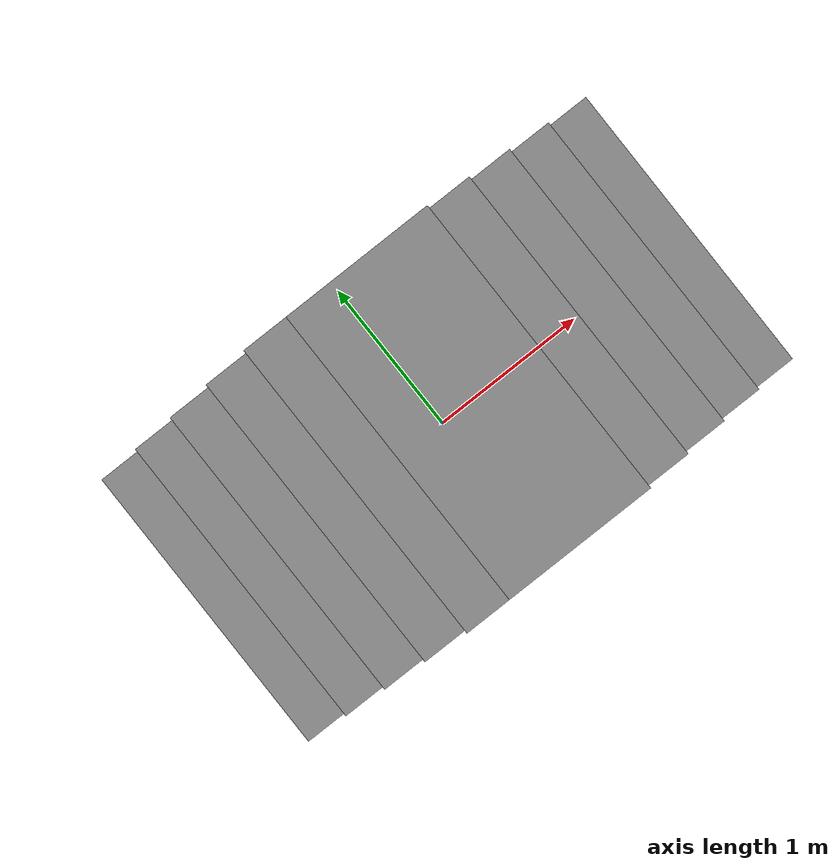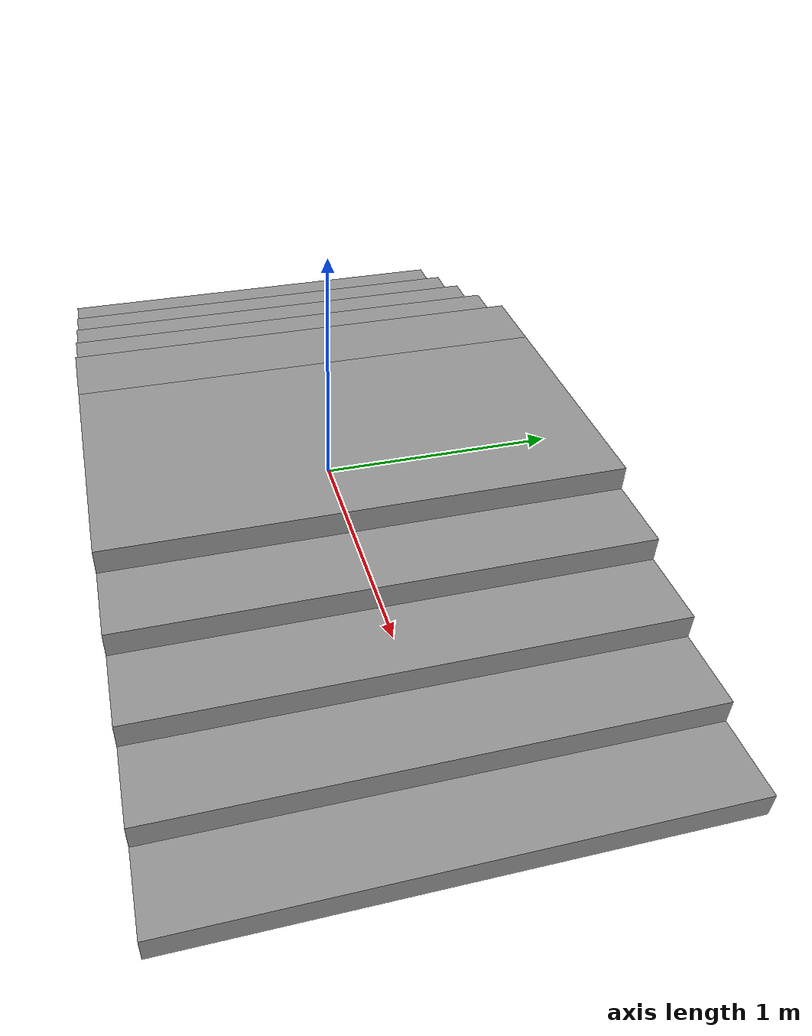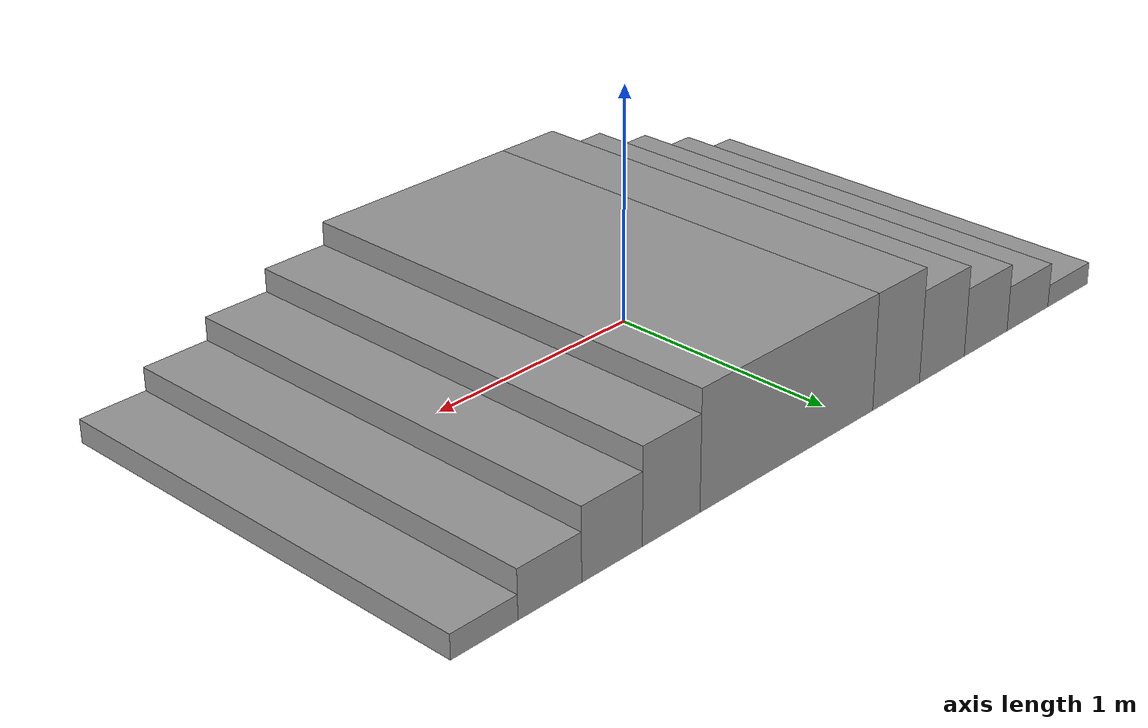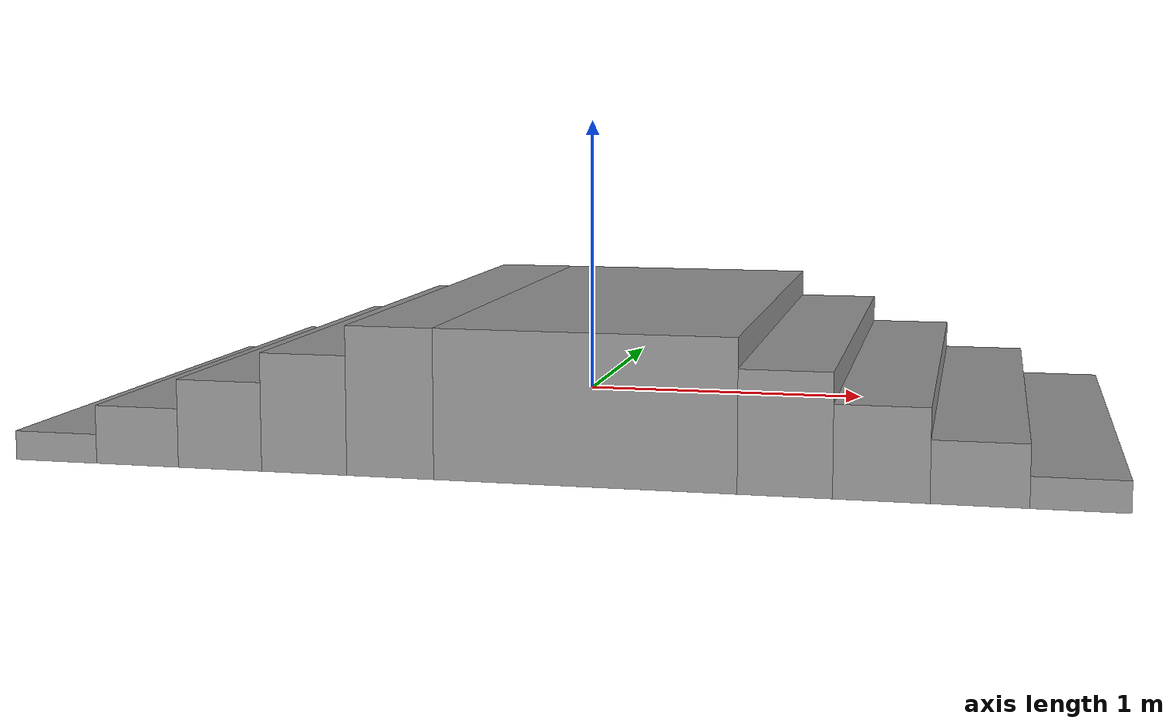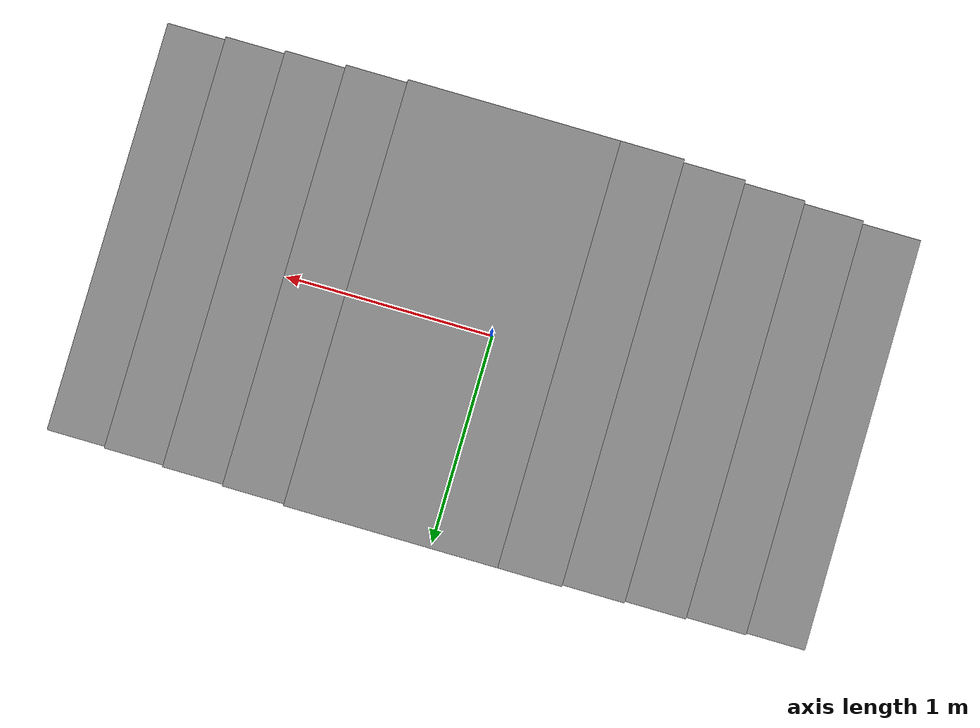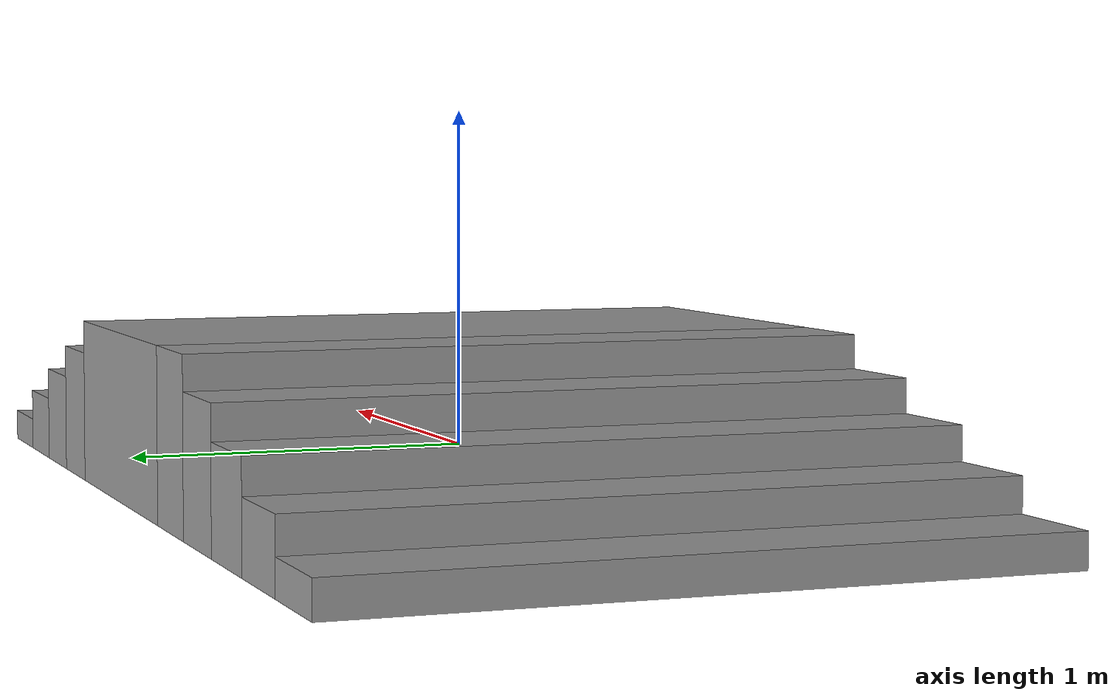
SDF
<?xml version='1.0'?>
<sdf version='1.7'>
  <model name='10cm'>
    <link name='link_0'>
      <inertial>
        <mass>1</mass>
        <inertia>
          <ixx>0.166667</ixx>
          <ixy>0</ixy>
          <ixz>0</ixz>
          <iyy>0.166667</iyy>
          <iyz>0</iyz>
          <izz>0.166667</izz>
        </inertia>
        <pose>0 0 0 0 -0 0</pose>
      </inertial>
      <pose>-1.665 0 -0.1 0 -0 0</pose>
      <gravity>1</gravity>
      <self_collide>0</self_collide>
      <kinematic>1</kinematic>
      <enable_wind>0</enable_wind>
      <visual name='visual'>
        <pose>0 0 0 0 -0 0</pose>
        <geometry>
          <box>
            <size>0.3 2 0.1</size>
          </box>
        </geometry>
        <material>
          <lighting>1</lighting>
          <script>
            <uri>file://media/materials/scripts/gazebo.material</uri>
            <name>Gazebo/Grey</name>
          </script>
          <shader type='pixel'>
            <normal_map>__default__</normal_map>
          </shader>
          <ambient>0.3 0.3 0.3 1</ambient>
          <diffuse>0.7 0.7 0.7 1</diffuse>
          <specular>0.01 0.01 0.01 1</specular>
          <emissive>0 0 0 1</emissive>
        </material>
        <transparency>0</transparency>
        <cast_shadows>1</cast_shadows>
      </visual>
      <collision name='collision'>
        <laser_retro>0</laser_retro>
        <max_contacts>10</max_contacts>
        <pose>0 0 0 0 -0 0</pose>
        <geometry>
          <box>
            <size>0.3 2 0.1</size>
          </box>
        </geometry>
        <surface>
          <friction>
            <ode>
              <mu>1</mu>
              <mu2>1</mu2>
              <fdir1>0 0 0</fdir1>
              <slip1>0</slip1>
              <slip2>0</slip2>
            </ode>
            <torsional>
              <coefficient>1</coefficient>
              <patch_radius>0</patch_radius>
              <surface_radius>0</surface_radius>
              <use_patch_radius>1</use_patch_radius>
              <ode>
                <slip>0</slip>
              </ode>
            </torsional>
          </friction>
          <bounce>
            <restitution_coefficient>0</restitution_coefficient>
            <threshold>1e+06</threshold>
          </bounce>
          <contact>
            <collide_without_contact>0</collide_without_contact>
            <collide_without_contact_bitmask>1</collide_without_contact_bitmask>
            <collide_bitmask>1</collide_bitmask>
            <ode>
              <soft_cfm>0</soft_cfm>
              <soft_erp>0.2</soft_erp>
              <kp>1e+13</kp>
              <kd>1</kd>
              <max_vel>0.01</max_vel>
              <min_depth>0</min_depth>
            </ode>
            <bullet>
              <split_impulse>1</split_impulse>
              <split_impulse_penetration_threshold>-0.01</split_impulse_penetration_threshold>
              <soft_cfm>0</soft_cfm>
              <soft_erp>0.2</soft_erp>
              <kp>1e+13</kp>
              <kd>1</kd>
            </bullet>
          </contact>
        </surface>
      </collision>
    </link>
    <link name='link_0_clone'>
      <inertial>
        <mass>1</mass>
        <inertia>
          <ixx>0.166667</ixx>
          <ixy>0</ixy>
          <ixz>0</ixz>
          <iyy>0.166667</iyy>
          <iyz>0</iyz>
          <izz>0.166667</izz>
        </inertia>
        <pose>0 0 0 0 -0 0</pose>
      </inertial>
      <pose>-1.365 0 -0.05 0 -0 0</pose>
      <gravity>1</gravity>
      <self_collide>0</self_collide>
      <kinematic>1</kinematic>
      <enable_wind>0</enable_wind>
      <visual name='visual'>
        <pose>0 0 0 0 -0 0</pose>
        <geometry>
          <box>
            <size>0.3 2 0.2</size>
          </box>
        </geometry>
        <material>
          <lighting>1</lighting>
          <script>
            <uri>file://media/materials/scripts/gazebo.material</uri>
            <name>Gazebo/Grey</name>
          </script>
          <shader type='pixel'>
            <normal_map>__default__</normal_map>
          </shader>
          <ambient>0.3 0.3 0.3 1</ambient>
          <diffuse>0.7 0.7 0.7 1</diffuse>
          <specular>0.01 0.01 0.01 1</specular>
          <emissive>0 0 0 1</emissive>
        </material>
        <transparency>0</transparency>
        <cast_shadows>1</cast_shadows>
      </visual>
      <collision name='collision'>
        <laser_retro>0</laser_retro>
        <max_contacts>10</max_contacts>
        <pose>0 0 0 0 -0 0</pose>
        <geometry>
          <box>
            <size>0.3 2 0.2</size>
          </box>
        </geometry>
        <surface>
          <friction>
            <ode>
              <mu>1</mu>
              <mu2>1</mu2>
              <fdir1>0 0 0</fdir1>
              <slip1>0</slip1>
              <slip2>0</slip2>
            </ode>
            <torsional>
              <coefficient>1</coefficient>
              <patch_radius>0</patch_radius>
              <surface_radius>0</surface_radius>
              <use_patch_radius>1</use_patch_radius>
              <ode>
                <slip>0</slip>
              </ode>
            </torsional>
          </friction>
          <bounce>
            <restitution_coefficient>0</restitution_coefficient>
            <threshold>1e+06</threshold>
          </bounce>
          <contact>
            <collide_without_contact>0</collide_without_contact>
            <collide_without_contact_bitmask>1</collide_without_contact_bitmask>
            <collide_bitmask>1</collide_bitmask>
            <ode>
              <soft_cfm>0</soft_cfm>
              <soft_erp>0.2</soft_erp>
              <kp>1e+13</kp>
              <kd>1</kd>
              <max_vel>0.01</max_vel>
              <min_depth>0</min_depth>
            </ode>
            <bullet>
              <split_impulse>1</split_impulse>
              <split_impulse_penetration_threshold>-0.01</split_impulse_penetration_threshold>
              <soft_cfm>0</soft_cfm>
              <soft_erp>0.2</soft_erp>
              <kp>1e+13</kp>
              <kd>1</kd>
            </bullet>
          </contact>
        </surface>
      </collision>
    </link>
    <link name='link_0_clone_0'>
      <inertial>
        <mass>1</mass>
        <inertia>
          <ixx>0.166667</ixx>
          <ixy>0</ixy>
          <ixz>0</ixz>
          <iyy>0.166667</iyy>
          <iyz>0</iyz>
          <izz>0.166667</izz>
        </inertia>
        <pose>0 0 0 0 -0 0</pose>
      </inertial>
      <pose>1.735 0 -0.1 0 -0 0</pose>
      <gravity>1</gravity>
      <self_collide>0</self_collide>
      <kinematic>1</kinematic>
      <enable_wind>0</enable_wind>
      <visual name='visual'>
        <pose>0 0 0 0 -0 0</pose>
        <geometry>
          <box>
            <size>0.3 2 0.1</size>
          </box>
        </geometry>
        <material>
          <lighting>1</lighting>
          <script>
            <uri>file://media/materials/scripts/gazebo.material</uri>
            <name>Gazebo/Grey</name>
          </script>
          <shader type='pixel'>
            <normal_map>__default__</normal_map>
          </shader>
          <ambient>0.3 0.3 0.3 1</ambient>
          <diffuse>0.7 0.7 0.7 1</diffuse>
          <specular>0.01 0.01 0.01 1</specular>
          <emissive>0 0 0 1</emissive>
        </material>
        <transparency>0</transparency>
        <cast_shadows>1</cast_shadows>
      </visual>
      <collision name='collision'>
        <laser_retro>0</laser_retro>
        <max_contacts>10</max_contacts>
        <pose>0 0 0 0 -0 0</pose>
        <geometry>
          <box>
            <size>0.3 2 0.1</size>
          </box>
        </geometry>
        <surface>
          <friction>
            <ode>
              <mu>1</mu>
              <mu2>1</mu2>
              <fdir1>0 0 0</fdir1>
              <slip1>0</slip1>
              <slip2>0</slip2>
            </ode>
            <torsional>
              <coefficient>1</coefficient>
              <patch_radius>0</patch_radius>
              <surface_radius>0</surface_radius>
              <use_patch_radius>1</use_patch_radius>
              <ode>
                <slip>0</slip>
              </ode>
            </torsional>
          </friction>
          <bounce>
            <restitution_coefficient>0</restitution_coefficient>
            <threshold>1e+06</threshold>
          </bounce>
          <contact>
            <collide_without_contact>0</collide_without_contact>
            <collide_without_contact_bitmask>1</collide_without_contact_bitmask>
            <collide_bitmask>1</collide_bitmask>
            <ode>
              <soft_cfm>0</soft_cfm>
              <soft_erp>0.2</soft_erp>
              <kp>1e+13</kp>
              <kd>1</kd>
              <max_vel>0.01</max_vel>
              <min_depth>0</min_depth>
            </ode>
            <bullet>
              <split_impulse>1</split_impulse>
              <split_impulse_penetration_threshold>-0.01</split_impulse_penetration_threshold>
              <soft_cfm>0</soft_cfm>
              <soft_erp>0.2</soft_erp>
              <kp>1e+13</kp>
              <kd>1</kd>
            </bullet>
          </contact>
        </surface>
      </collision>
    </link>
    <link name='link_0_clone_clone'>
      <inertial>
        <mass>1</mass>
        <inertia>
          <ixx>0.166667</ixx>
          <ixy>0</ixy>
          <ixz>0</ixz>
          <iyy>0.166667</iyy>
          <iyz>0</iyz>
          <izz>0.166667</izz>
        </inertia>
        <pose>0 0 0 0 -0 0</pose>
      </inertial>
      <pose>-1.065 0 0 0 -0 0</pose>
      <gravity>1</gravity>
      <self_collide>0</self_collide>
      <kinematic>1</kinematic>
      <enable_wind>0</enable_wind>
      <visual name='visual'>
        <pose>0 0 0 0 -0 0</pose>
        <geometry>
          <box>
            <size>0.3 2 0.3</size>
          </box>
        </geometry>
        <material>
          <lighting>1</lighting>
          <script>
            <uri>file://media/materials/scripts/gazebo.material</uri>
            <name>Gazebo/Grey</name>
          </script>
          <shader type='pixel'>
            <normal_map>__default__</normal_map>
          </shader>
          <ambient>0.3 0.3 0.3 1</ambient>
          <diffuse>0.7 0.7 0.7 1</diffuse>
          <specular>0.01 0.01 0.01 1</specular>
          <emissive>0 0 0 1</emissive>
        </material>
        <transparency>0</transparency>
        <cast_shadows>1</cast_shadows>
      </visual>
      <collision name='collision'>
        <laser_retro>0</laser_retro>
        <max_contacts>10</max_contacts>
        <pose>0 0 0 0 -0 0</pose>
        <geometry>
          <box>
            <size>0.3 2 0.3</size>
          </box>
        </geometry>
        <surface>
          <friction>
            <ode>
              <mu>1</mu>
              <mu2>1</mu2>
              <fdir1>0 0 0</fdir1>
              <slip1>0</slip1>
              <slip2>0</slip2>
            </ode>
            <torsional>
              <coefficient>1</coefficient>
              <patch_radius>0</patch_radius>
              <surface_radius>0</surface_radius>
              <use_patch_radius>1</use_patch_radius>
              <ode>
                <slip>0</slip>
              </ode>
            </torsional>
          </friction>
          <bounce>
            <restitution_coefficient>0</restitution_coefficient>
            <threshold>1e+06</threshold>
          </bounce>
          <contact>
            <collide_without_contact>0</collide_without_contact>
            <collide_without_contact_bitmask>1</collide_without_contact_bitmask>
            <collide_bitmask>1</collide_bitmask>
            <ode>
              <soft_cfm>0</soft_cfm>
              <soft_erp>0.2</soft_erp>
              <kp>1e+13</kp>
              <kd>1</kd>
              <max_vel>0.01</max_vel>
              <min_depth>0</min_depth>
            </ode>
            <bullet>
              <split_impulse>1</split_impulse>
              <split_impulse_penetration_threshold>-0.01</split_impulse_penetration_threshold>
              <soft_cfm>0</soft_cfm>
              <soft_erp>0.2</soft_erp>
              <kp>1e+13</kp>
              <kd>1</kd>
            </bullet>
          </contact>
        </surface>
      </collision>
    </link>
    <link name='link_0_clone_clone_0'>
      <inertial>
        <mass>1</mass>
        <inertia>
          <ixx>0.166667</ixx>
          <ixy>0</ixy>
          <ixz>0</ixz>
          <iyy>0.166667</iyy>
          <iyz>0</iyz>
          <izz>0.166667</izz>
        </inertia>
        <pose>0 0 0 0 -0 0</pose>
      </inertial>
      <pose>1.435 0 -0.05 0 -0 0</pose>
      <gravity>1</gravity>
      <self_collide>0</self_collide>
      <kinematic>1</kinematic>
      <enable_wind>0</enable_wind>
      <visual name='visual'>
        <pose>0 0 0 0 -0 0</pose>
        <geometry>
          <box>
            <size>0.3 2 0.2</size>
          </box>
        </geometry>
        <material>
          <lighting>1</lighting>
          <script>
            <uri>file://media/materials/scripts/gazebo.material</uri>
            <name>Gazebo/Grey</name>
          </script>
          <shader type='pixel'>
            <normal_map>__default__</normal_map>
          </shader>
          <ambient>0.3 0.3 0.3 1</ambient>
          <diffuse>0.7 0.7 0.7 1</diffuse>
          <specular>0.01 0.01 0.01 1</specular>
          <emissive>0 0 0 1</emissive>
        </material>
        <transparency>0</transparency>
        <cast_shadows>1</cast_shadows>
      </visual>
      <collision name='collision'>
        <laser_retro>0</laser_retro>
        <max_contacts>10</max_contacts>
        <pose>0 0 0 0 -0 0</pose>
        <geometry>
          <box>
            <size>0.3 2 0.2</size>
          </box>
        </geometry>
        <surface>
          <friction>
            <ode>
              <mu>1</mu>
              <mu2>1</mu2>
              <fdir1>0 0 0</fdir1>
              <slip1>0</slip1>
              <slip2>0</slip2>
            </ode>
            <torsional>
              <coefficient>1</coefficient>
              <patch_radius>0</patch_radius>
              <surface_radius>0</surface_radius>
              <use_patch_radius>1</use_patch_radius>
              <ode>
                <slip>0</slip>
              </ode>
            </torsional>
          </friction>
          <bounce>
            <restitution_coefficient>0</restitution_coefficient>
            <threshold>1e+06</threshold>
          </bounce>
          <contact>
            <collide_without_contact>0</collide_without_contact>
            <collide_without_contact_bitmask>1</collide_without_contact_bitmask>
            <collide_bitmask>1</collide_bitmask>
            <ode>
              <soft_cfm>0</soft_cfm>
              <soft_erp>0.2</soft_erp>
              <kp>1e+13</kp>
              <kd>1</kd>
              <max_vel>0.01</max_vel>
              <min_depth>0</min_depth>
            </ode>
            <bullet>
              <split_impulse>1</split_impulse>
              <split_impulse_penetration_threshold>-0.01</split_impulse_penetration_threshold>
              <soft_cfm>0</soft_cfm>
              <soft_erp>0.2</soft_erp>
              <kp>1e+13</kp>
              <kd>1</kd>
            </bullet>
          </contact>
        </surface>
      </collision>
    </link>
    <link name='link_0_clone_clone_clone'>
      <inertial>
        <mass>1</mass>
        <inertia>
          <ixx>0.166667</ixx>
          <ixy>0</ixy>
          <ixz>0</ixz>
          <iyy>0.166667</iyy>
          <iyz>0</iyz>
          <izz>0.166667</izz>
        </inertia>
        <pose>0 0 0 0 -0 0</pose>
      </inertial>
      <pose>-0.765 0 0.05 0 -0 0</pose>
      <gravity>1</gravity>
      <self_collide>0</self_collide>
      <kinematic>1</kinematic>
      <enable_wind>0</enable_wind>
      <visual name='visual'>
        <pose>0 0 0 0 -0 0</pose>
        <geometry>
          <box>
            <size>0.3 2 0.4</size>
          </box>
        </geometry>
        <material>
          <lighting>1</lighting>
          <script>
            <uri>file://media/materials/scripts/gazebo.material</uri>
            <name>Gazebo/Grey</name>
          </script>
          <shader type='pixel'>
            <normal_map>__default__</normal_map>
          </shader>
          <ambient>0.3 0.3 0.3 1</ambient>
          <diffuse>0.7 0.7 0.7 1</diffuse>
          <specular>0.01 0.01 0.01 1</specular>
          <emissive>0 0 0 1</emissive>
        </material>
        <transparency>0</transparency>
        <cast_shadows>1</cast_shadows>
      </visual>
      <collision name='collision'>
        <laser_retro>0</laser_retro>
        <max_contacts>10</max_contacts>
        <pose>0 0 0 0 -0 0</pose>
        <geometry>
          <box>
            <size>0.3 2 0.4</size>
          </box>
        </geometry>
        <surface>
          <friction>
            <ode>
              <mu>1</mu>
              <mu2>1</mu2>
              <fdir1>0 0 0</fdir1>
              <slip1>0</slip1>
              <slip2>0</slip2>
            </ode>
            <torsional>
              <coefficient>1</coefficient>
              <patch_radius>0</patch_radius>
              <surface_radius>0</surface_radius>
              <use_patch_radius>1</use_patch_radius>
              <ode>
                <slip>0</slip>
              </ode>
            </torsional>
          </friction>
          <bounce>
            <restitution_coefficient>0</restitution_coefficient>
            <threshold>1e+06</threshold>
          </bounce>
          <contact>
            <collide_without_contact>0</collide_without_contact>
            <collide_without_contact_bitmask>1</collide_without_contact_bitmask>
            <collide_bitmask>1</collide_bitmask>
            <ode>
              <soft_cfm>0</soft_cfm>
              <soft_erp>0.2</soft_erp>
              <kp>1e+13</kp>
              <kd>1</kd>
              <max_vel>0.01</max_vel>
              <min_depth>0</min_depth>
            </ode>
            <bullet>
              <split_impulse>1</split_impulse>
              <split_impulse_penetration_threshold>-0.01</split_impulse_penetration_threshold>
              <soft_cfm>0</soft_cfm>
              <soft_erp>0.2</soft_erp>
              <kp>1e+13</kp>
              <kd>1</kd>
            </bullet>
          </contact>
        </surface>
      </collision>
    </link>
    <link name='link_0_clone_clone_clone_0'>
      <inertial>
        <mass>1</mass>
        <inertia>
          <ixx>0.166667</ixx>
          <ixy>0</ixy>
          <ixz>0</ixz>
          <iyy>0.166667</iyy>
          <iyz>0</iyz>
          <izz>0.166667</izz>
        </inertia>
        <pose>0 0 0 0 -0 0</pose>
      </inertial>
      <pose>1.135 0 0 0 -0 0</pose>
      <gravity>1</gravity>
      <self_collide>0</self_collide>
      <kinematic>1</kinematic>
      <enable_wind>0</enable_wind>
      <visual name='visual'>
        <pose>0 0 0 0 -0 0</pose>
        <geometry>
          <box>
            <size>0.3 2 0.3</size>
          </box>
        </geometry>
        <material>
          <lighting>1</lighting>
          <script>
            <uri>file://media/materials/scripts/gazebo.material</uri>
            <name>Gazebo/Grey</name>
          </script>
          <shader type='pixel'>
            <normal_map>__default__</normal_map>
          </shader>
          <ambient>0.3 0.3 0.3 1</ambient>
          <diffuse>0.7 0.7 0.7 1</diffuse>
          <specular>0.01 0.01 0.01 1</specular>
          <emissive>0 0 0 1</emissive>
        </material>
        <transparency>0</transparency>
        <cast_shadows>1</cast_shadows>
      </visual>
      <collision name='collision'>
        <laser_retro>0</laser_retro>
        <max_contacts>10</max_contacts>
        <pose>0 0 0 0 -0 0</pose>
        <geometry>
          <box>
            <size>0.3 2 0.3</size>
          </box>
        </geometry>
        <surface>
          <friction>
            <ode>
              <mu>1</mu>
              <mu2>1</mu2>
              <fdir1>0 0 0</fdir1>
              <slip1>0</slip1>
              <slip2>0</slip2>
            </ode>
            <torsional>
              <coefficient>1</coefficient>
              <patch_radius>0</patch_radius>
              <surface_radius>0</surface_radius>
              <use_patch_radius>1</use_patch_radius>
              <ode>
                <slip>0</slip>
              </ode>
            </torsional>
          </friction>
          <bounce>
            <restitution_coefficient>0</restitution_coefficient>
            <threshold>1e+06</threshold>
          </bounce>
          <contact>
            <collide_without_contact>0</collide_without_contact>
            <collide_without_contact_bitmask>1</collide_without_contact_bitmask>
            <collide_bitmask>1</collide_bitmask>
            <ode>
              <soft_cfm>0</soft_cfm>
              <soft_erp>0.2</soft_erp>
              <kp>1e+13</kp>
              <kd>1</kd>
              <max_vel>0.01</max_vel>
              <min_depth>0</min_depth>
            </ode>
            <bullet>
              <split_impulse>1</split_impulse>
              <split_impulse_penetration_threshold>-0.01</split_impulse_penetration_threshold>
              <soft_cfm>0</soft_cfm>
              <soft_erp>0.2</soft_erp>
              <kp>1e+13</kp>
              <kd>1</kd>
            </bullet>
          </contact>
        </surface>
      </collision>
    </link>
    <link name='link_0_clone_clone_clone_clone'>
      <inertial>
        <mass>1</mass>
        <inertia>
          <ixx>0.166667</ixx>
          <ixy>0</ixy>
          <ixz>0</ixz>
          <iyy>0.166667</iyy>
          <iyz>0</iyz>
          <izz>0.166667</izz>
        </inertia>
        <pose>0 0 0 0 -0 0</pose>
      </inertial>
      <pose>-0.465 0 0.1 0 -0 0</pose>
      <gravity>1</gravity>
      <self_collide>0</self_collide>
      <kinematic>1</kinematic>
      <enable_wind>0</enable_wind>
      <visual name='visual'>
        <pose>0 0 0 0 -0 0</pose>
        <geometry>
          <box>
            <size>0.3 2 0.5</size>
          </box>
        </geometry>
        <material>
          <lighting>1</lighting>
          <script>
            <uri>file://media/materials/scripts/gazebo.material</uri>
            <name>Gazebo/Grey</name>
          </script>
          <shader type='pixel'>
            <normal_map>__default__</normal_map>
          </shader>
          <ambient>0.3 0.3 0.3 1</ambient>
          <diffuse>0.7 0.7 0.7 1</diffuse>
          <specular>0.01 0.01 0.01 1</specular>
          <emissive>0 0 0 1</emissive>
        </material>
        <transparency>0</transparency>
        <cast_shadows>1</cast_shadows>
      </visual>
      <collision name='collision'>
        <laser_retro>0</laser_retro>
        <max_contacts>10</max_contacts>
        <pose>0 0 0 0 -0 0</pose>
        <geometry>
          <box>
            <size>0.3 2 0.5</size>
          </box>
        </geometry>
        <surface>
          <friction>
            <ode>
              <mu>1</mu>
              <mu2>1</mu2>
              <fdir1>0 0 0</fdir1>
              <slip1>0</slip1>
              <slip2>0</slip2>
            </ode>
            <torsional>
              <coefficient>1</coefficient>
              <patch_radius>0</patch_radius>
              <surface_radius>0</surface_radius>
              <use_patch_radius>1</use_patch_radius>
              <ode>
                <slip>0</slip>
              </ode>
            </torsional>
          </friction>
          <bounce>
            <restitution_coefficient>0</restitution_coefficient>
            <threshold>1e+06</threshold>
          </bounce>
          <contact>
            <collide_without_contact>0</collide_without_contact>
            <collide_without_contact_bitmask>1</collide_without_contact_bitmask>
            <collide_bitmask>1</collide_bitmask>
            <ode>
              <soft_cfm>0</soft_cfm>
              <soft_erp>0.2</soft_erp>
              <kp>1e+13</kp>
              <kd>1</kd>
              <max_vel>0.01</max_vel>
              <min_depth>0</min_depth>
            </ode>
            <bullet>
              <split_impulse>1</split_impulse>
              <split_impulse_penetration_threshold>-0.01</split_impulse_penetration_threshold>
              <soft_cfm>0</soft_cfm>
              <soft_erp>0.2</soft_erp>
              <kp>1e+13</kp>
              <kd>1</kd>
            </bullet>
          </contact>
        </surface>
      </collision>
    </link>
    <link name='link_0_clone_clone_clone_clone_0'>
      <inertial>
        <mass>1</mass>
        <inertia>
          <ixx>0.166667</ixx>
          <ixy>0</ixy>
          <ixz>0</ixz>
          <iyy>0.166667</iyy>
          <iyz>0</iyz>
          <izz>0.166667</izz>
        </inertia>
        <pose>0 0 0 0 -0 0</pose>
      </inertial>
      <pose>0.835 0 0.05 0 -0 0</pose>
      <gravity>1</gravity>
      <self_collide>0</self_collide>
      <kinematic>1</kinematic>
      <enable_wind>0</enable_wind>
      <visual name='visual'>
        <pose>0 0 0 0 -0 0</pose>
        <geometry>
          <box>
            <size>0.3 2 0.4</size>
          </box>
        </geometry>
        <material>
          <lighting>1</lighting>
          <script>
            <uri>file://media/materials/scripts/gazebo.material</uri>
            <name>Gazebo/Grey</name>
          </script>
          <shader type='pixel'>
            <normal_map>__default__</normal_map>
          </shader>
          <ambient>0.3 0.3 0.3 1</ambient>
          <diffuse>0.7 0.7 0.7 1</diffuse>
          <specular>0.01 0.01 0.01 1</specular>
          <emissive>0 0 0 1</emissive>
        </material>
        <transparency>0</transparency>
        <cast_shadows>1</cast_shadows>
      </visual>
      <collision name='collision'>
        <laser_retro>0</laser_retro>
        <max_contacts>10</max_contacts>
        <pose>0 0 0 0 -0 0</pose>
        <geometry>
          <box>
            <size>0.3 2 0.4</size>
          </box>
        </geometry>
        <surface>
          <friction>
            <ode>
              <mu>1</mu>
              <mu2>1</mu2>
              <fdir1>0 0 0</fdir1>
              <slip1>0</slip1>
              <slip2>0</slip2>
            </ode>
            <torsional>
              <coefficient>1</coefficient>
              <patch_radius>0</patch_radius>
              <surface_radius>0</surface_radius>
              <use_patch_radius>1</use_patch_radius>
              <ode>
                <slip>0</slip>
              </ode>
            </torsional>
          </friction>
          <bounce>
            <restitution_coefficient>0</restitution_coefficient>
            <threshold>1e+06</threshold>
          </bounce>
          <contact>
            <collide_without_contact>0</collide_without_contact>
            <collide_without_contact_bitmask>1</collide_without_contact_bitmask>
            <collide_bitmask>1</collide_bitmask>
            <ode>
              <soft_cfm>0</soft_cfm>
              <soft_erp>0.2</soft_erp>
              <kp>1e+13</kp>
              <kd>1</kd>
              <max_vel>0.01</max_vel>
              <min_depth>0</min_depth>
            </ode>
            <bullet>
              <split_impulse>1</split_impulse>
              <split_impulse_penetration_threshold>-0.01</split_impulse_penetration_threshold>
              <soft_cfm>0</soft_cfm>
              <soft_erp>0.2</soft_erp>
              <kp>1e+13</kp>
              <kd>1</kd>
            </bullet>
          </contact>
        </surface>
      </collision>
    </link>
    <link name='link_0_clone_clone_clone_clone_clone'>
      <inertial>
        <mass>1</mass>
        <inertia>
          <ixx>0.166667</ixx>
          <ixy>0</ixy>
          <ixz>0</ixz>
          <iyy>0.166667</iyy>
          <iyz>0</iyz>
          <izz>0.166667</izz>
        </inertia>
        <pose>0 0 0 0 -0 0</pose>
      </inertial>
      <pose>0.185 0 0.1 0 -0 0</pose>
      <gravity>1</gravity>
      <self_collide>0</self_collide>
      <kinematic>1</kinematic>
      <enable_wind>0</enable_wind>
      <visual name='visual'>
        <pose>0 0 0 0 -0 0</pose>
        <geometry>
          <box>
            <size>1 2 0.5</size>
          </box>
        </geometry>
        <material>
          <lighting>1</lighting>
          <script>
            <uri>file://media/materials/scripts/gazebo.material</uri>
            <name>Gazebo/Grey</name>
          </script>
          <shader type='pixel'>
            <normal_map>__default__</normal_map>
          </shader>
          <ambient>0.3 0.3 0.3 1</ambient>
          <diffuse>0.7 0.7 0.7 1</diffuse>
          <specular>0.01 0.01 0.01 1</specular>
          <emissive>0 0 0 1</emissive>
        </material>
        <transparency>0</transparency>
        <cast_shadows>1</cast_shadows>
      </visual>
      <collision name='collision'>
        <laser_retro>0</laser_retro>
        <max_contacts>10</max_contacts>
        <pose>0 0 0 0 -0 0</pose>
        <geometry>
          <box>
            <size>1 2 0.5</size>
          </box>
        </geometry>
        <surface>
          <friction>
            <ode>
              <mu>1</mu>
              <mu2>1</mu2>
              <fdir1>0 0 0</fdir1>
              <slip1>0</slip1>
              <slip2>0</slip2>
            </ode>
            <torsional>
              <coefficient>1</coefficient>
              <patch_radius>0</patch_radius>
              <surface_radius>0</surface_radius>
              <use_patch_radius>1</use_patch_radius>
              <ode>
                <slip>0</slip>
              </ode>
            </torsional>
          </friction>
          <bounce>
            <restitution_coefficient>0</restitution_coefficient>
            <threshold>1e+06</threshold>
          </bounce>
          <contact>
            <collide_without_contact>0</collide_without_contact>
            <collide_without_contact_bitmask>1</collide_without_contact_bitmask>
            <collide_bitmask>1</collide_bitmask>
            <ode>
              <soft_cfm>0</soft_cfm>
              <soft_erp>0.2</soft_erp>
              <kp>1e+13</kp>
              <kd>1</kd>
              <max_vel>0.01</max_vel>
              <min_depth>0</min_depth>
            </ode>
            <bullet>
              <split_impulse>1</split_impulse>
              <split_impulse_penetration_threshold>-0.01</split_impulse_penetration_threshold>
              <soft_cfm>0</soft_cfm>
              <soft_erp>0.2</soft_erp>
              <kp>1e+13</kp>
              <kd>1</kd>
            </bullet>
          </contact>
        </surface>
      </collision>
    </link>
    <static>0</static>
    <allow_auto_disable>1</allow_auto_disable>
  </model>
</sdf>
